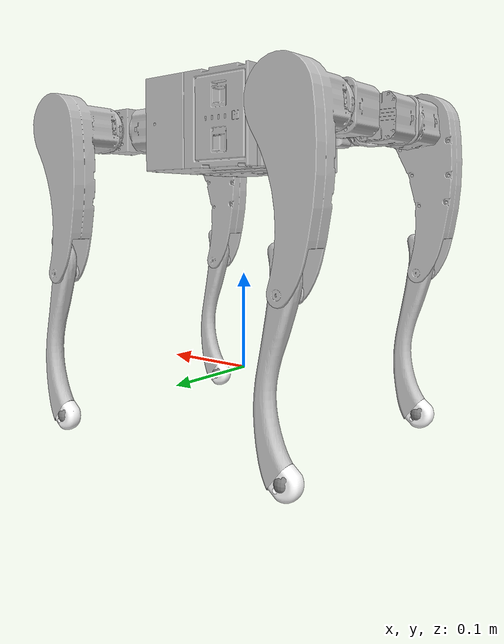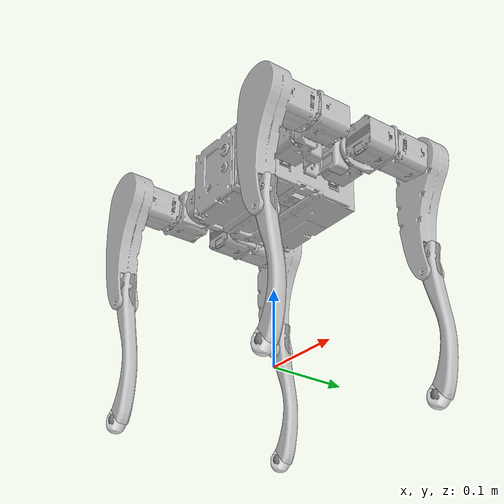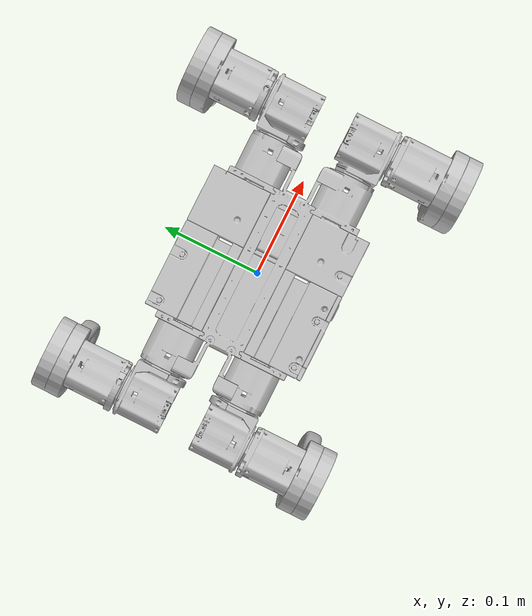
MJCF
<mujoco model="ri_4438">
  <compiler angle="radian" autolimits="true" />
  <statistic meansize="0.118031" extent="0.565049" center="-0.00381955 -0.0037439 -0.0762009" />
  <asset>
    <!-- The original base mesh has 223,040 faces. These two files are an exact
         triangle-record split of that mesh for MuJoCo's 200,000-face STL limit. -->
    <mesh name="base_link_part_1" file="assets/base_link_part_1.STL" />
    <mesh name="base_link_part_2" file="assets/base_link_part_2.STL" />
    <mesh name="FL_hip" file="assets/FL_hip.STL" />
    <mesh name="FL_thigh" file="assets/FL_thigh.STL" />
    <mesh name="FL_calf" file="assets/FL_calf.STL" />
    <mesh name="FL_foot" file="assets/FL_foot.STL" />
    <mesh name="FR_hip" file="assets/FR_hip.STL" />
    <mesh name="FR_thigh" file="assets/FR_thigh.STL" />
    <mesh name="FR_calf" file="assets/FR_calf.STL" />
    <mesh name="FR_foot" file="assets/FR_foot.STL" />
    <mesh name="RL_hip" file="assets/RL_hip.STL" />
    <mesh name="RL_thigh" file="assets/RL_thigh.STL" />
    <mesh name="RL_calf" file="assets/RL_calf.STL" />
    <mesh name="RL_foot" file="assets/RL_foot.STL" />
    <mesh name="RR_hip" file="assets/RR_hip.STL" />
    <mesh name="RR_thigh" file="assets/RR_thigh.STL" />
    <mesh name="RR_calf" file="assets/RR_calf.STL" />
    <mesh name="RR_foot" file="assets/RR_foot.STL" />
    <material name="visual_body" rgba="0.78 0.78 0.78 1" specular="0.25" shininess="0.35" />
    <material name="collision_debug" rgba="0.95 0.65 0.12 0.35" specular="0" />
  </asset>
  <worldbody>
    <body name="base_link" pos="0 0 0.25">
      <freejoint name="float_base" />
      <inertial pos="-0.00301327 0.00204115 -0.000635" mass="2.74343032" fullinertia="0.00588039 0.01284666 0.01600904 0.00048912 0.00004378 -0.00003516" />
      <site name="imu" pos="0 0 0" />
      <geom type="mesh" contype="0" conaffinity="0" group="1" density="0" rgba="0.752941 0.752941 0.752941 1" mesh="base_link_part_1" material="visual_body" />
      <geom type="mesh" contype="0" conaffinity="0" group="1" density="0" rgba="0.752941 0.752941 0.752941 1" mesh="base_link_part_2" material="visual_body" />
      <!-- MuJoCo box size stores half-extents. Keep this proxy slightly inset
           from the URDF box so folded legs do not catch on the base. -->
      <geom name="base_collision" type="box" pos="0 -0.0011 0" size="0.092 0.056 0.038" group="3" material="collision_debug" rgba="0.95 0.65 0.12 0.35" />
      <body name="FL_hip" pos="0.14165 0.037 0">
        <inertial pos="-0.00266064 0.00153194 -0.00011724" quat="-0.0372601 0.71114 0.0168296 0.701861" mass="0.270797" diaginertia="3.5803e-05 3.43926e-05 2.35344e-05" />
        <joint name="FL_hip_joint" pos="0 0 0" axis="1 0 0" range="-1.5 1.5" />
        <geom type="mesh" contype="0" conaffinity="0" group="1" density="0" rgba="0.752941 0.752941 0.752941 1" mesh="FL_hip" material="visual_body" />
        <!-- Low-cost collision proxy: the hip housing is close to a cylinder
             whose axis follows the hip joint (the local y axis). -->
        <geom name="FL_hip_collision" type="cylinder" size="0.028 0.024" quat="0.707107 0.707107 0 0" group="3" material="collision_debug" rgba="0.95 0.65 0.12 0.35" />
        <body name="FL_thigh" pos="0 0.0834 0">
          <inertial pos="-0.00360471 -0.0176323 -0.0219034" quat="0.988193 0.126831 0.0446349 0.0734545" mass="0.480862" diaginertia="0.00104576 0.000990493 0.000191919" />
          <joint name="FL_thigh_joint" pos="0 0 0" axis="0 1 0" range="-1.57 3.49" />
          <geom type="mesh" contype="0" conaffinity="0" group="1" density="0" rgba="0.752941 0.752941 0.752941 1" mesh="FL_thigh" material="visual_body" />
          <!-- Slender link proxy scaled to the 150 mm RI-4438 thigh; keep the
               motor housing separate so folded motion does not use one large box. -->
          <geom name="FL_thigh_collision" type="box" pos="-0.005 0 -0.065" size="0.0125 0.014 0.080" group="3" material="collision_debug" rgba="0.95 0.65 0.12 0.35" />
          <geom name="FL_thigh_motor_collision" type="cylinder" pos="-0.001 -0.024 0.002" quat="0.707107 0.707107 0 0" size="0.033 0.032" group="3" material="collision_debug" rgba="0.95 0.65 0.12 0.35" />
          <body name="FL_calf" pos="0 0 -0.15">
            <inertial pos="0.00899888 2.89519e-06 -0.0659713" quat="0.70692 -0.0124579 -0.0123951 0.707075" mass="0.065602" diaginertia="0.000257707 0.000253407 6.87944e-06" />
            <joint name="FL_calf_joint" pos="0 0 0" axis="0 1 0" range="-2.53 -0.84" />
            <geom type="mesh" contype="0" conaffinity="0" group="1" density="0" rgba="0.752941 0.752941 0.752941 1" mesh="FL_calf" material="visual_body" />
            <!-- Proximal calf housing sits below the calf joint and covers the
                 upper motor/STL section. -->
            <geom name="FL_calf2_collision" type="cylinder" size="0.0105 0.043" pos="0.0125 0 -0.046" quat="0.991408 0 -0.130803 0" group="3" material="collision_debug" rgba="0.95 0.65 0.12 0.35" />
            <!-- Distal shank is shorter and tilted with the lower STL section. -->
            <geom name="FL_calf1_collision" type="cylinder" size="0.011 0.025" pos="0.0183 0 -0.111" quat="0.996297 0 0.085980 0" group="3" material="collision_debug" rgba="0.95 0.65 0.12 0.35" />
            <geom pos="0 0 -0.15" type="mesh" contype="0" conaffinity="0" group="1" density="0" rgba="1 1 1 1" mesh="FL_foot" material="visual_body" />
            <!-- All foot spheres match the mesh's 15.73 mm local bottom extent
                 from the foot site; the 1 mm margin offsets solver compression. -->
            <geom name="FL_foot_collision" type="sphere" size="0.01573" pos="0 0 -0.15" group="3" friction="1.0 0.005 0.0001" priority="1" solref="0.02 1" solimp="0.9 0.95 0.023" margin="0.001" material="collision_debug" />
            <site name="FL" pos="0 0 -0.15" size="0.01" />
          </body>
        </body>
      </body>
      <body name="FR_hip" pos="0.14165 -0.037 0">
        <inertial pos="-0.00266064 -0.00153194 0.00011724" quat="0.0168296 0.701861 -0.0372601 0.71114" mass="0.270797" diaginertia="3.5803e-05 3.43926e-05 2.35344e-05" />
        <joint name="FR_hip_joint" pos="0 0 0" axis="1 0 0" range="-1.5 1.5" />
        <geom type="mesh" contype="0" conaffinity="0" group="1" density="0" rgba="0.752941 0.752941 0.752941 1" mesh="FR_hip" material="visual_body" />
        <geom name="FR_hip_collision" type="cylinder" size="0.028 0.024" quat="0.707107 0.707107 0 0" group="3" material="collision_debug" rgba="0.95 0.65 0.12 0.35" />
        <body name="FR_thigh" pos="0 -0.0834 0">
          <inertial pos="-0.00559051 0.0176322 -0.0210737" quat="0.98578 -0.125515 0.0933783 -0.0613606" mass="0.480861" diaginertia="0.00105408 0.000996037 0.000194768" />
          <joint name="FR_thigh_joint" pos="0 0 0" axis="0 1 0" range="-1.57 3.49" />
          <geom type="mesh" contype="0" conaffinity="0" group="1" density="0" rgba="0.752941 0.752941 0.752941 1" mesh="FR_thigh" material="visual_body" />
          <geom name="FR_thigh_collision" type="box" pos="-0.005 0 -0.065" size="0.0125 0.014 0.080" group="3" material="collision_debug" rgba="0.95 0.65 0.12 0.35" />
          <geom name="FR_thigh_motor_collision" type="cylinder" pos="-0.001 0.024 0.002" quat="0.707107 0.707107 0 0" size="0.033 0.032" group="3" material="collision_debug" rgba="0.95 0.65 0.12 0.35" />
          <body name="FR_calf" pos="0 0 -0.15">
            <inertial pos="0.00899889 2.89519e-06 -0.0659713" quat="0.70692 -0.0124579 -0.0123951 0.707075" mass="0.065602" diaginertia="0.000257707 0.000253407 6.87944e-06" />
            <joint name="FR_calf_joint" pos="0 0 0" axis="0 1 0" range="-2.53 -0.84" />
            <geom type="mesh" contype="0" conaffinity="0" group="1" density="0" rgba="0.752941 0.752941 0.752941 1" mesh="FR_calf" material="visual_body" />
            <geom name="FR_calf2_collision" type="cylinder" size="0.0105 0.043" pos="0.0125 0 -0.046" quat="0.991408 0 -0.130803 0" group="3" material="collision_debug" rgba="0.95 0.65 0.12 0.35" />
            <geom name="FR_calf1_collision" type="cylinder" size="0.011 0.025" pos="0.0183 0 -0.111" quat="0.996297 0 0.085980 0" group="3" material="collision_debug" rgba="0.95 0.65 0.12 0.35" />
            <geom pos="0 0 -0.15" type="mesh" contype="0" conaffinity="0" group="1" density="0" rgba="1 1 1 1" mesh="FR_foot" material="visual_body" />
            <geom name="FR_foot_collision" type="sphere" size="0.01573" pos="0 0 -0.15" group="3" friction="1.0 0.005 0.0001" priority="1" solref="0.02 1" solimp="0.9 0.95 0.023" margin="0.001" material="collision_debug" />
            <site name="FR" pos="0 0 -0.15" size="0.01" />
          </body>
        </body>
      </body>
      <body name="RL_hip" pos="-0.14165 0.037 0">
        <inertial pos="0.00266064 0.00153194 0.00011724" quat="0.0372601 0.71114 -0.0168296 0.701861" mass="0.270797" diaginertia="3.5803e-05 3.43926e-05 2.35344e-05" />
        <joint name="RL_hip_joint" pos="0 0 0" axis="1 0 0" range="-1.5 1.5" />
        <geom type="mesh" contype="0" conaffinity="0" group="1" density="0" rgba="0.752941 0.752941 0.752941 1" mesh="RL_hip" material="visual_body" />
        <geom name="RL_hip_collision" type="cylinder" size="0.028 0.024" quat="0.707107 0.707107 0 0" group="3" material="collision_debug" rgba="0.95 0.65 0.12 0.35" />
        <body name="RL_thigh" pos="0 0.0834 0">
          <inertial pos="-0.00555466 -0.0176323 -0.0210155" quat="0.985074 0.127403 0.0866694 0.0767224" mass="0.480862" diaginertia="0.00105519 0.000997623 0.00019482" />
          <joint name="RL_thigh_joint" pos="0 0 0" axis="0 1 0" range="-1.57 3.49" />
          <geom type="mesh" contype="0" conaffinity="0" group="1" density="0" rgba="0.752941 0.752941 0.752941 1" mesh="RL_thigh" material="visual_body" />
          <geom name="RL_thigh_collision" type="box" pos="-0.005 0 -0.065" size="0.0125 0.014 0.080" group="3" material="collision_debug" rgba="0.95 0.65 0.12 0.35" />
          <geom name="RL_thigh_motor_collision" type="cylinder" pos="-0.001 -0.024 0.002" quat="0.707107 0.707107 0 0" size="0.033 0.032" group="3" material="collision_debug" rgba="0.95 0.65 0.12 0.35" />
          <body name="RL_calf" pos="0 0 -0.15">
            <inertial pos="0.00899888 2.89519e-06 -0.0659713" quat="0.70692 -0.0124579 -0.0123951 0.707075" mass="0.065602" diaginertia="0.000257707 0.000253407 6.87944e-06" />
            <joint name="RL_calf_joint" pos="0 0 0" axis="0 1 0" range="-2.53 -0.84" />
            <geom type="mesh" contype="0" conaffinity="0" group="1" density="0" rgba="0.752941 0.752941 0.752941 1" mesh="RL_calf" material="visual_body" />
            <geom name="RL_calf2_collision" type="cylinder" size="0.0105 0.043" pos="0.0125 0 -0.046" quat="0.991408 0 -0.130803 0" group="3" material="collision_debug" rgba="0.95 0.65 0.12 0.35" />
            <geom name="RL_calf1_collision" type="cylinder" size="0.011 0.025" pos="0.0183 0 -0.111" quat="0.996297 0 0.085980 0" group="3" material="collision_debug" rgba="0.95 0.65 0.12 0.35" />
            <geom pos="0 0 -0.15" type="mesh" contype="0" conaffinity="0" group="1" density="0" rgba="1 1 1 1" mesh="RL_foot" material="visual_body" />
            <geom name="RL_foot_collision" type="sphere" size="0.01573" pos="0 0 -0.15" group="3" friction="1.0 0.005 0.0001" priority="1" solref="0.02 1" solimp="0.9 0.95 0.023" margin="0.001" material="collision_debug" />
            <site name="RL" pos="0 0 -0.15" size="0.01" />
          </body>
        </body>
      </body>
      <body name="RR_hip" pos="-0.14165 -0.037 0">
        <inertial pos="0.00266064 -0.00153194 -0.00011724" quat="-0.0168296 0.701861 0.0372601 0.71114" mass="0.270797" diaginertia="3.5803e-05 3.43926e-05 2.35344e-05" />
        <joint name="RR_hip_joint" pos="0 0 0" axis="1 0 0" range="-1.5 1.5" />
        <geom type="mesh" contype="0" conaffinity="0" group="1" density="0" rgba="0.752941 0.752941 0.752941 1" mesh="RR_hip" material="visual_body" />
        <geom name="RR_hip_collision" type="cylinder" size="0.028 0.024" quat="0.707107 0.707107 0 0" group="3" material="collision_debug" rgba="0.95 0.65 0.12 0.35" />
        <body name="RR_thigh" pos="0 -0.0834 0">
          <inertial pos="-0.00521957 0.01761785 -0.02116423" mass="0.48086142" fullinertia="0.00102378 0.00095271 0.00026924 -0.00004288 -0.00015179 -0.00018005" />
          <joint name="RR_thigh_joint" pos="0 0 0" axis="0 1 0" range="-1.57 3.49" />
          <geom type="mesh" contype="0" conaffinity="0" group="1" density="0" rgba="0.752941 0.752941 0.752941 1" mesh="RR_thigh" material="visual_body" />
          <geom name="RR_thigh_collision" type="box" pos="-0.005 0 -0.065" size="0.0125 0.014 0.080" group="3" material="collision_debug" rgba="0.95 0.65 0.12 0.35" />
          <geom name="RR_thigh_motor_collision" type="cylinder" pos="-0.001 0.024 0.002" quat="0.707107 0.707107 0 0" size="0.033 0.032" group="3" material="collision_debug" rgba="0.95 0.65 0.12 0.35" />
          <body name="RR_calf" pos="0 0 -0.15">
            <inertial pos="0.00899888 2.89519e-06 -0.0659713" quat="0.70692 -0.0124579 -0.0123951 0.707075" mass="0.065602" diaginertia="0.000257707 0.000253407 6.87944e-06" />
            <joint name="RR_calf_joint" pos="0 0 0" axis="0 1 0" range="-2.53 -0.84" />
            <geom type="mesh" contype="0" conaffinity="0" group="1" density="0" rgba="0.752941 0.752941 0.752941 1" mesh="RR_calf" material="visual_body" />
            <geom name="RR_calf2_collision" type="cylinder" size="0.0105 0.043" pos="0.0125 0 -0.046" quat="0.991408 0 -0.130803 0" group="3" material="collision_debug" rgba="0.95 0.65 0.12 0.35" />
            <geom name="RR_calf1_collision" type="cylinder" size="0.011 0.025" pos="0.0183 0 -0.111" quat="0.996297 0 0.085980 0" group="3" material="collision_debug" rgba="0.95 0.65 0.12 0.35" />
            <geom pos="0 0 -0.15" type="mesh" contype="0" conaffinity="0" group="1" density="0" rgba="1 1 1 1" mesh="RR_foot" material="visual_body" />
            <geom name="RR_foot_collision" type="sphere" size="0.01573" pos="0 0 -0.15" group="3" friction="1.0 0.005 0.0001" priority="1" solref="0.02 1" solimp="0.9 0.95 0.023" margin="0.001" material="collision_debug" />
            <site name="RR" pos="0 0 -0.15" size="0.01" />
          </body>
        </body>
      </body>
    </body>
  </worldbody>

  <sensor>
    <gyro name="imu_ang_vel" site="imu"/>
    <velocimeter name="imu_lin_vel" site="imu"/>
    <accelerometer name="imu_lin_acc" site="imu"/>
    <subtreeangmom name="root_angmom" body="base_link"/>
  </sensor>

  <default>
    <joint damping="0.02" frictionloss="0.06" armature="0.008234" />
    <geom friction="0.4 0.005 0.0001" margin="0.0" condim="3" />
  </default>
</mujoco>
